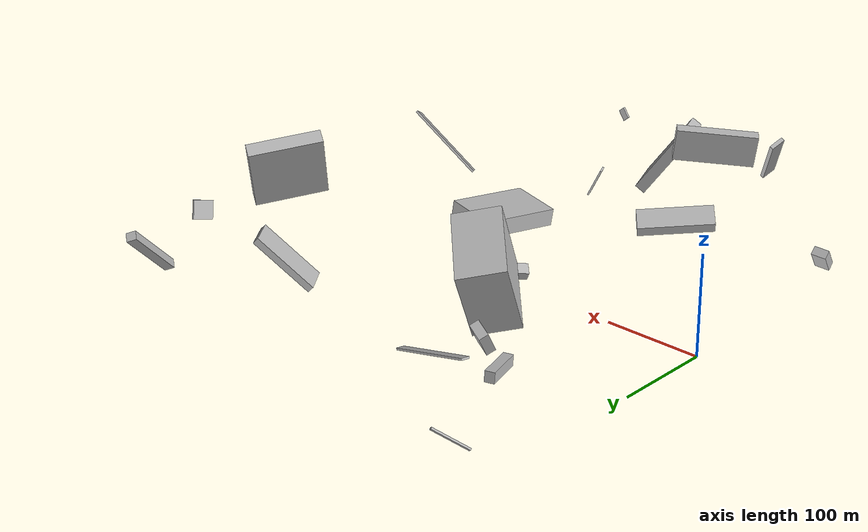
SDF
<sdf version="1.6">
 <world name="default">
  <scene>
   <sky><clouds><speed>12</speed></clouds></sky>
   <ambient>0.4 0.4 0.4 1</ambient>
   <background>0.7 0.7 0.7 1</background>
   <shadows>1</shadows>
  </scene>
  <gravity>0 0 -9.8066</gravity>
  <magnetic_field>6e-06 2.3e-05 -4.2e-05</magnetic_field>
  <physics default="0" name="default_physics" type="ode">
   <ode>
    <solver>
     <type>quick</type>
     <iters>10</iters>
     <sor>1.0</sor>
     <use_dynamic_moi_rescaling>0</use_dynamic_moi_rescaling>
    </solver>
    <constraints>
     <cfm>0</cfm>
     <erp>0.2</erp>
     <contact_max_correcting_vel>100</contact_max_correcting_vel>
     <contact_surface_layer>0.001</contact_surface_layer>
    </constraints>
   </ode>
   <max_step_size>0.004</max_step_size>
   <real_time_factor>1</real_time_factor>
   <real_time_update_rate>250</real_time_update_rate>
  </physics>
  <light name="sun" type="directional">
   <pose>0 0 10 0 0 0</pose>
   <diffuse>0.8 0.8 0.8 1</diffuse>
   <specular>0.2 0.2 0.2 1</specular>
   <attenuation>
    <range>1000</range>
    <constant>0.9</constant>
    <linear>0.01</linear>
    <quadratic>0.001</quadratic>
   </attenuation>
   <direction>-0.5 0.1 -0.9</direction>
  </light>
  <model name="building_1">
   <static>0</static>
   <pose>48.08977941750676 208.40942397226124 48.583075143418796 0.04472945460449853 0.07991285078446372 -1.2152041036249497</pose>
   <link name="link">
    <gravity>0</gravity>
    <pose>0 0 5.0 0 0 0</pose>
    <collision name="collision"><geometry><box><size>40 9 10</size></box></geometry></collision>
    <visual name="visual">
     <cast_shadows>0</cast_shadows>
     <geometry><box><size>40 9 10</size></box></geometry>
     <material>
      <script>
       <uri>model://HANNAS_wall/materials/scripts</uri>
       <uri>model://HANNAS_wall/materials/textures</uri>
       <name>vrc/HANNAS_wall</name>
      </script>
     </material>
    </visual>
   </link>
  </model>
  <model name="building_2">
   <static>0</static>
   <pose>420.5656870660854 105.8504581366181 92.34530357826051 0.2610648407130136 -1.0852594303528198 2.33924231677644</pose>
   <link name="link">
    <gravity>0</gravity>
    <pose>0 0 8.0 0 0 0</pose>
    <collision name="collision"><geometry><box><size>73 74 16</size></box></geometry></collision>
    <visual name="visual">
     <cast_shadows>0</cast_shadows>
     <geometry><box><size>73 74 16</size></box></geometry>
     <material>
      <script>
       <uri>model://HANNAS_wall/materials/scripts</uri>
       <uri>model://HANNAS_wall/materials/textures</uri>
       <name>vrc/HANNAS_wall</name>
      </script>
     </material>
    </visual>
   </link>
  </model>
  <model name="building_3">
   <static>0</static>
   <pose>270.0086492195188 -237.5619722518531 104.44632163228701 -3.0178779760377554 0.9138496807188801 3.0525013618387806</pose>
   <link name="link">
    <gravity>0</gravity>
    <pose>0 0 4.5 0 0 0</pose>
    <collision name="collision"><geometry><box><size>12 2 9</size></box></geometry></collision>
    <visual name="visual">
     <cast_shadows>0</cast_shadows>
     <geometry><box><size>12 2 9</size></box></geometry>
     <material>
      <script>
       <uri>model://HANNAS_wall/materials/scripts</uri>
       <uri>model://HANNAS_wall/materials/textures</uri>
       <name>vrc/HANNAS_wall</name>
      </script>
     </material>
    </visual>
   </link>
  </model>
  <model name="building_4">
   <static>0</static>
   <pose>377.55599036343426 153.20517164719527 27.762969701977248 -0.7714219325241184 -0.00016260050850842948 2.234718827378894</pose>
   <link name="link">
    <gravity>0</gravity>
    <pose>0 0 3.5 0 0 0</pose>
    <collision name="collision"><geometry><box><size>34 71 7</size></box></geometry></collision>
    <visual name="visual">
     <cast_shadows>0</cast_shadows>
     <geometry><box><size>34 71 7</size></box></geometry>
     <material>
      <script>
       <uri>model://HANNAS_wall/materials/scripts</uri>
       <uri>model://HANNAS_wall/materials/textures</uri>
       <name>vrc/HANNAS_wall</name>
      </script>
     </material>
    </visual>
   </link>
  </model>
  <model name="building_5">
   <static>0</static>
   <pose>151.55482489543107 142.80440303854354 80.40506499074552 1.3586509037130223 -0.45383440934188357 -0.7569244496035776</pose>
   <link name="link">
    <gravity>0</gravity>
    <pose>0 0 22.5 0 0 0</pose>
    <collision name="collision"><geometry><box><size>73 80 45</size></box></geometry></collision>
    <visual name="visual">
     <cast_shadows>0</cast_shadows>
     <geometry><box><size>73 80 45</size></box></geometry>
     <material>
      <script>
       <uri>model://HANNAS_wall/materials/scripts</uri>
       <uri>model://HANNAS_wall/materials/textures</uri>
       <name>vrc/HANNAS_wall</name>
      </script>
     </material>
    </visual>
   </link>
  </model>
  <model name="building_6">
   <static>0</static>
   <pose>225.97927794483127 -245.7730751237632 54.516176675601805 1.5446479056418998 -0.6252598083725088 0.4045587846357612</pose>
   <link name="link">
    <gravity>0</gravity>
    <pose>0 0 27.5 0 0 0</pose>
    <collision name="collision"><geometry><box><size>12 80 55</size></box></geometry></collision>
    <visual name="visual">
     <cast_shadows>0</cast_shadows>
     <geometry><box><size>12 80 55</size></box></geometry>
     <material>
      <script>
       <uri>model://HANNAS_wall/materials/scripts</uri>
       <uri>model://HANNAS_wall/materials/textures</uri>
       <name>vrc/HANNAS_wall</name>
      </script>
     </material>
    </visual>
   </link>
  </model>
  <model name="building_7">
   <static>0</static>
   <pose>465.4673416404422 244.5258596750955 45.460269948277045 2.698810084675645 0.7452394464967264 -1.1896258999454021</pose>
   <link name="link">
    <gravity>0</gravity>
    <pose>0 0 4.5 0 0 0</pose>
    <collision name="collision"><geometry><box><size>80 10 9</size></box></geometry></collision>
    <visual name="visual">
     <cast_shadows>0</cast_shadows>
     <geometry><box><size>80 10 9</size></box></geometry>
     <material>
      <script>
       <uri>model://HANNAS_wall/materials/scripts</uri>
       <uri>model://HANNAS_wall/materials/textures</uri>
       <name>vrc/HANNAS_wall</name>
      </script>
     </material>
    </visual>
   </link>
  </model>
  <model name="building_8">
   <static>0</static>
   <pose>297.09588604838655 -233.6224803185061 33.321094179122085 -2.5291842482194107 -0.6508639399685288 -1.5291368963896677</pose>
   <link name="link">
    <gravity>0</gravity>
    <pose>0 0 40.0 0 0 0</pose>
    <collision name="collision"><geometry><box><size>6 2 80</size></box></geometry></collision>
    <visual name="visual">
     <cast_shadows>0</cast_shadows>
     <geometry><box><size>6 2 80</size></box></geometry>
     <material>
      <script>
       <uri>model://HANNAS_wall/materials/scripts</uri>
       <uri>model://HANNAS_wall/materials/textures</uri>
       <name>vrc/HANNAS_wall</name>
      </script>
     </material>
    </visual>
   </link>
  </model>
  <model name="building_9">
   <static>0</static>
   <pose>116.87028140214156 -184.49688778477105 134.51364281024672 3.057593402217277 0.23275082787625784 2.244891584337767</pose>
   <link name="link">
    <gravity>0</gravity>
    <pose>0 0 17.0 0 0 0</pose>
    <collision name="collision"><geometry><box><size>11 80 34</size></box></geometry></collision>
    <visual name="visual">
     <cast_shadows>0</cast_shadows>
     <geometry><box><size>11 80 34</size></box></geometry>
     <material>
      <script>
       <uri>model://HANNAS_wall/materials/scripts</uri>
       <uri>model://HANNAS_wall/materials/textures</uri>
       <name>vrc/HANNAS_wall</name>
      </script>
     </material>
    </visual>
   </link>
  </model>
  <model name="building_10">
   <static>0</static>
   <pose>-1.352821310595774 275.3766542464391 126.24460032573649 2.3947945087384843 -0.9185466710023825 1.9282576114561147</pose>
   <link name="link">
    <gravity>0</gravity>
    <pose>0 0 4.0 0 0 0</pose>
    <collision name="collision"><geometry><box><size>25 15 8</size></box></geometry></collision>
    <visual name="visual">
     <cast_shadows>0</cast_shadows>
     <geometry><box><size>25 15 8</size></box></geometry>
     <material>
      <script>
       <uri>model://HANNAS_wall/materials/scripts</uri>
       <uri>model://HANNAS_wall/materials/textures</uri>
       <name>vrc/HANNAS_wall</name>
      </script>
     </material>
    </visual>
   </link>
  </model>
  <model name="building_11">
   <static>0</static>
   <pose>160.7893282417461 56.954200320944985 99.26663449991416 1.458876644567756 -0.09312633884214895 1.4224136082064398</pose>
   <link name="link">
    <gravity>0</gravity>
    <pose>0 0 24.5 0 0 0</pose>
    <collision name="collision"><geometry><box><size>78 16 49</size></box></geometry></collision>
    <visual name="visual">
     <cast_shadows>0</cast_shadows>
     <geometry><box><size>78 16 49</size></box></geometry>
     <material>
      <script>
       <uri>model://HANNAS_wall/materials/scripts</uri>
       <uri>model://HANNAS_wall/materials/textures</uri>
       <name>vrc/HANNAS_wall</name>
      </script>
     </material>
    </visual>
   </link>
  </model>
  <model name="building_12">
   <static>0</static>
   <pose>201.15666898075094 7.876426980462688 28.09153359415765 2.8624723566671952 -1.0290832716570932 2.7207293182108785</pose>
   <link name="link">
    <gravity>0</gravity>
    <pose>0 0 6.0 0 0 0</pose>
    <collision name="collision"><geometry><box><size>10 11 12</size></box></geometry></collision>
    <visual name="visual">
     <cast_shadows>0</cast_shadows>
     <geometry><box><size>10 11 12</size></box></geometry>
     <material>
      <script>
       <uri>model://HANNAS_wall/materials/scripts</uri>
       <uri>model://HANNAS_wall/materials/textures</uri>
       <name>vrc/HANNAS_wall</name>
      </script>
     </material>
    </visual>
   </link>
  </model>
  <model name="building_13">
   <static>0</static>
   <pose>8.342414135878721 -214.67228382324586 17.60453979938937 0.7849015870340219 -0.12362895624853269 0.177268067012687</pose>
   <link name="link">
    <gravity>0</gravity>
    <pose>0 0 4.5 0 0 0</pose>
    <collision name="collision"><geometry><box><size>15 30 9</size></box></geometry></collision>
    <visual name="visual">
     <cast_shadows>0</cast_shadows>
     <geometry><box><size>15 30 9</size></box></geometry>
     <material>
      <script>
       <uri>model://HANNAS_wall/materials/scripts</uri>
       <uri>model://HANNAS_wall/materials/textures</uri>
       <name>vrc/HANNAS_wall</name>
      </script>
     </material>
    </visual>
   </link>
  </model>
  <model name="building_14">
   <static>0</static>
   <pose>199.71660361598686 -170.02803770774295 17.97047592774549 1.4727742211277695 -0.6304195141956974 -0.801800314162102</pose>
   <link name="link">
    <gravity>0</gravity>
    <pose>0 0 40.0 0 0 0</pose>
    <collision name="collision"><geometry><box><size>23 15 80</size></box></geometry></collision>
    <visual name="visual">
     <cast_shadows>0</cast_shadows>
     <geometry><box><size>23 15 80</size></box></geometry>
     <material>
      <script>
       <uri>model://HANNAS_wall/materials/scripts</uri>
       <uri>model://HANNAS_wall/materials/textures</uri>
       <name>vrc/HANNAS_wall</name>
      </script>
     </material>
    </visual>
   </link>
  </model>
  <model name="building_15">
   <static>0</static>
   <pose>311.6054930178972 -5.767321319344502 123.14804338686827 1.1013312454990398 -0.697084649000293 -2.0864903543115783</pose>
   <link name="link">
    <gravity>0</gravity>
    <pose>0 0 38.0 0 0 0</pose>
    <collision name="collision"><geometry><box><size>2 77 76</size></box></geometry></collision>
    <visual name="visual">
     <cast_shadows>0</cast_shadows>
     <geometry><box><size>2 77 76</size></box></geometry>
     <material>
      <script>
       <uri>model://HANNAS_wall/materials/scripts</uri>
       <uri>model://HANNAS_wall/materials/textures</uri>
       <name>vrc/HANNAS_wall</name>
      </script>
     </material>
    </visual>
   </link>
  </model>
  <model name="building_16">
   <static>0</static>
   <pose>71.68845514109263 -211.69124704966356 112.19327277073049 -2.443009874908015 -0.8113225359082354 2.285122550289758</pose>
   <link name="link">
    <gravity>0</gravity>
    <pose>0 0 2.0 0 0 0</pose>
    <collision name="collision"><geometry><box><size>65 15 4</size></box></geometry></collision>
    <visual name="visual">
     <cast_shadows>0</cast_shadows>
     <geometry><box><size>65 15 4</size></box></geometry>
     <material>
      <script>
       <uri>model://HANNAS_wall/materials/scripts</uri>
       <uri>model://HANNAS_wall/materials/textures</uri>
       <name>vrc/HANNAS_wall</name>
      </script>
     </material>
    </visual>
   </link>
  </model>
  <model name="building_17">
   <static>0</static>
   <pose>44.28582478829395 268.37044486219173 14.540122096223639 0.8510659480538137 0.6162302828567358 0.06280743308666505</pose>
   <link name="link">
    <gravity>0</gravity>
    <pose>0 0 1.0 0 0 0</pose>
    <collision name="collision"><geometry><box><size>2 41 2</size></box></geometry></collision>
    <visual name="visual">
     <cast_shadows>0</cast_shadows>
     <geometry><box><size>2 41 2</size></box></geometry>
     <material>
      <script>
       <uri>model://HANNAS_wall/materials/scripts</uri>
       <uri>model://HANNAS_wall/materials/textures</uri>
       <name>vrc/HANNAS_wall</name>
      </script>
     </material>
    </visual>
   </link>
  </model>
  <model name="building_18">
   <static>0</static>
   <pose>170.46604457982917 199.62271223759203 24.724495850374808 0.5370809093380996 -1.301379834253793 -0.5613304249082024</pose>
   <link name="link">
    <gravity>0</gravity>
    <pose>0 0 40.0 0 0 0</pose>
    <collision name="collision"><geometry><box><size>2 9 80</size></box></geometry></collision>
    <visual name="visual">
     <cast_shadows>0</cast_shadows>
     <geometry><box><size>2 9 80</size></box></geometry>
     <material>
      <script>
       <uri>model://HANNAS_wall/materials/scripts</uri>
       <uri>model://HANNAS_wall/materials/textures</uri>
       <name>vrc/HANNAS_wall</name>
      </script>
     </material>
    </visual>
   </link>
  </model>
  <model name="building_19">
   <static>0</static>
   <pose>404.05584178751377 223.43804427681255 104.54194281366274 -2.8651070384029067 0.22437494437023947 -0.046674317443376634</pose>
   <link name="link">
    <gravity>0</gravity>
    <pose>0 0 9.0 0 0 0</pose>
    <collision name="collision"><geometry><box><size>2 21 18</size></box></geometry></collision>
    <visual name="visual">
     <cast_shadows>0</cast_shadows>
     <geometry><box><size>2 21 18</size></box></geometry>
     <material>
      <script>
       <uri>model://HANNAS_wall/materials/scripts</uri>
       <uri>model://HANNAS_wall/materials/textures</uri>
       <name>vrc/HANNAS_wall</name>
      </script>
     </material>
    </visual>
   </link>
  </model>
 </world>
</sdf>
